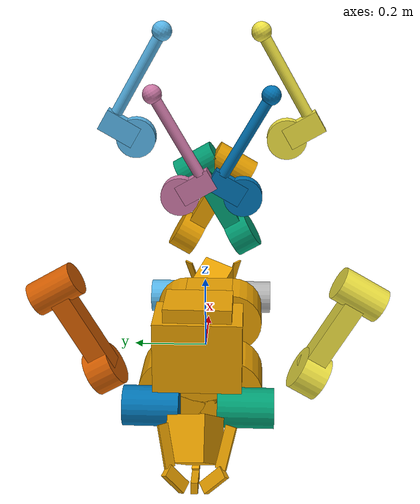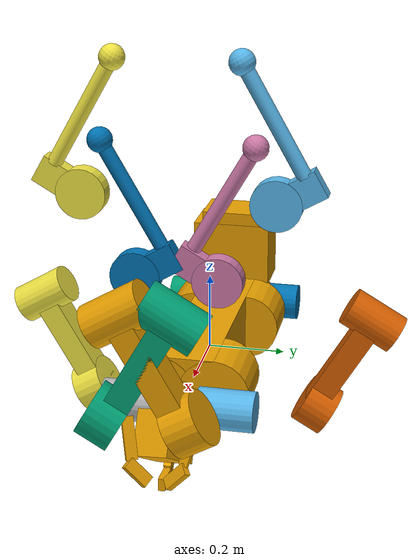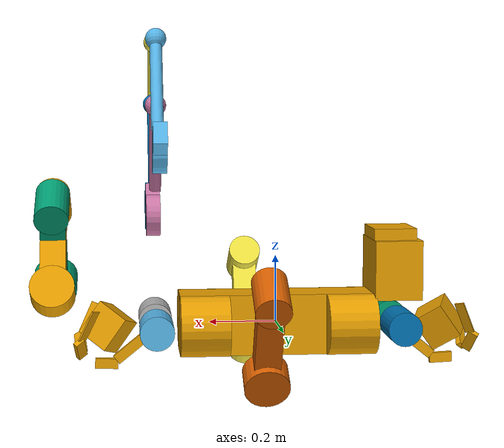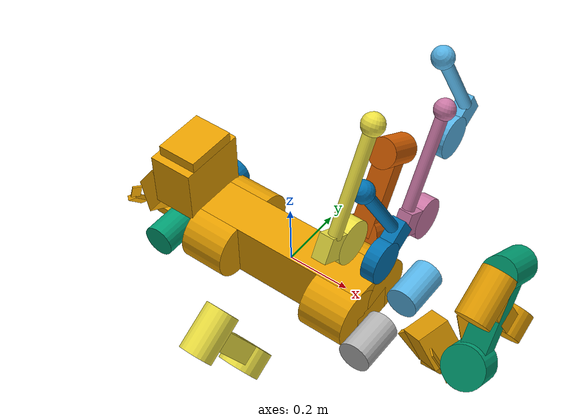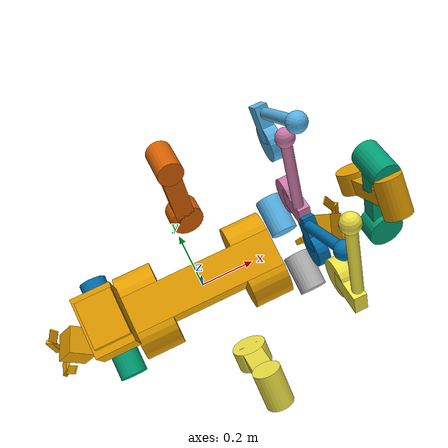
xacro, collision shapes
<?xml version='1.0' encoding='utf-8'?>
<robot name='cerberus_anymal_c_sensor_config_1' xmlns:xacro='http://ros.org/wiki/xacro'>
  <xacro:arg name="name" default="cerberus_anymal_c_sensor_config_1"/>
  <xacro:property name="robot_description_package" value="cerberus_anymal_c_sensor_config_1"/>
  <xacro:property name="robot_namespace" value="$(arg name)"/>
  <link name='${robot_namespace}/base'>
    <inertial>
      <origin xyz='-0.02203 -0.000162 0.009216' rpy='0 -0 0'/>
      <mass value='29.23832'/>
      <inertia ixx='0.236867' ixy='0.00846724' ixz='0.0854364' iyy='2.06849' iyz='-0.000253399' izz='2.09006'/>
    </inertial>
    <collision name='base_collision'>
      <origin xyz='0 0 0' rpy='0 -0 0'/>
      <geometry>
        <box size='0.58 0.14 0.18'/>
      </geometry>
    </collision>
    <collision name='base_collision_1'>
      <origin xyz='0.2175 0.07 0' rpy='3.14159 1.57079 3.14159'/>
      <geometry>
        <cylinder radius='0.09' length='0.145'/>
      </geometry>
    </collision>
    <collision name='base_collision_2'>
      <origin xyz='-0.2175 0.07 0' rpy='3.14159 1.57079 3.14159'/>
      <geometry>
        <cylinder radius='0.09' length='0.145'/>
      </geometry>
    </collision>
    <collision name='base_collision_3'>
      <origin xyz='0.2175 -0.07 0' rpy='3.14159 1.57079 3.14159'/>
      <geometry>
        <cylinder radius='0.09' length='0.145'/>
      </geometry>
    </collision>
    <collision name='base_collision_4'>
      <origin xyz='-0.2175 -0.07 0' rpy='3.14159 1.57079 3.14159'/>
      <geometry>
        <cylinder radius='0.09' length='0.145'/>
      </geometry>
    </collision>
    <collision name='base_fixed_joint_lump__alphasense_mesh_collision_5'>
      <origin xyz='-0.349598 0 0.235' rpy='0 -0 0'/>
      <geometry>
        <box size='0.128 0.165 0.098'/>
      </geometry>
    </collision>
    <collision name='base_fixed_joint_lump__bpearl_front_collision_6'>
      <origin xyz='0.501547 0 -0.010053' rpy='-2.85388 -0.54666 -0.517507'/>
      <geometry>
        <box size='0.1 0.1 0.11'/>
      </geometry>
    </collision>
    <collision name='base_fixed_joint_lump__bpearl_front_protection_bars_collision_collision_7'>
      <origin xyz='0.438876 0 -0.07746' rpy='3.14159 0.893609 3.14159'/>
      <geometry>
        <box size='0.03 0.018 0.1'/>
      </geometry>
    </collision>
    <collision name='base_fixed_joint_lump__bpearl_front_protection_bars_collision_collision_8'>
      <origin xyz='0.50696 0 -0.118904' rpy='1e-06 1.52542 1e-06'/>
      <geometry>
        <box size='0.03 0.017 0.068'/>
      </geometry>
    </collision>
    <collision name='base_fixed_joint_lump__bpearl_front_protection_bars_collision_collision_9'>
      <origin xyz='0.559988 -0.068944 0.007343' rpy='-2.68278 -0.125844 -0.83529'/>
      <geometry>
        <box size='0.03 0.005 0.1'/>
      </geometry>
    </collision>
    <collision name='base_fixed_joint_lump__bpearl_front_protection_bars_collision_collision_10'>
      <origin xyz='0.58501 -0.044431 -0.064253' rpy='-2.61177 0.516776 -0.491692'/>
      <geometry>
        <box size='0.03 0.016 0.068'/>
      </geometry>
    </collision>
    <collision name='base_fixed_joint_lump__bpearl_front_protection_bars_collision_collision_11'>
      <origin xyz='0.556968 0.071877 0.005228' rpy='2.66301 -0.103127 0.880443'/>
      <geometry>
        <box size='0.03 0.005 0.1'/>
      </geometry>
    </collision>
    <collision name='base_fixed_joint_lump__bpearl_front_protection_bars_collision_collision_12'>
      <origin xyz='0.583063 0.046321 -0.065616' rpy='2.58142 0.531321 0.5194'/>
      <geometry>
        <box size='0.03 0.016 0.068'/>
      </geometry>
    </collision>
    <collision name='base_fixed_joint_lump__bpearl_rear_collision_13'>
      <origin xyz='-0.501547 0 -0.010053' rpy='-2.85388 -0.54666 2.62409'/>
      <geometry>
        <box size='0.1 0.1 0.11'/>
      </geometry>
    </collision>
    <collision name='base_fixed_joint_lump__bpearl_rear_protection_bars_collision_collision_14'>
      <origin xyz='-0.438876 0 -0.07746' rpy='3.14159 0.893609 0'/>
      <geometry>
        <box size='0.03 0.018 0.1'/>
      </geometry>
    </collision>
    <collision name='base_fixed_joint_lump__bpearl_rear_protection_bars_collision_collision_15'>
      <origin xyz='-0.50696 0 -0.118904' rpy='1e-06 1.52542 -3.14159'/>
      <geometry>
        <box size='0.03 0.017 0.068'/>
      </geometry>
    </collision>
    <collision name='base_fixed_joint_lump__bpearl_rear_protection_bars_collision_collision_16'>
      <origin xyz='-0.565632 0.062519 0.011295' rpy='-2.72553 -0.168473 2.39838'/>
      <geometry>
        <box size='0.03 0.005 0.1'/>
      </geometry>
    </collision>
    <collision name='base_fixed_joint_lump__bpearl_rear_protection_bars_collision_collision_17'>
      <origin xyz='-0.588647 0.04029 -0.061706' rpy='-2.67308 0.489917 2.70612'/>
      <geometry>
        <box size='0.03 0.016 0.068'/>
      </geometry>
    </collision>
    <collision name='base_fixed_joint_lump__bpearl_rear_protection_bars_collision_collision_18'>
      <origin xyz='-0.553825 -0.074613 0.003028' rpy='2.64433 -0.079552 -2.21655'/>
      <geometry>
        <box size='0.03 0.005 0.1'/>
      </geometry>
    </collision>
    <collision name='base_fixed_joint_lump__bpearl_rear_protection_bars_collision_collision_19'>
      <origin xyz='-0.581038 -0.048084 -0.067034' rpy='2.55129 0.546584 -2.59477'/>
      <geometry>
        <box size='0.03 0.016 0.068'/>
      </geometry>
    </collision>
    <collision name='base_fixed_joint_lump__perception_head_cage_collision_20'>
      <origin xyz='-0.355957 0 0.1614' rpy='0 -0 0'/>
      <geometry>
        <box size='0.14151 0.21544 0.1768'/>
      </geometry>
    </collision>
    <collision name='base_fixed_joint_lump__imu_link_collision_21'>
      <origin xyz='0.2488 0.00835 0.05128' rpy='0 -0 1.5708'/>
      <geometry>
        <box size='0.024 0.024 0.01'/>
      </geometry>
    </collision>
    <visual name='base_visual'>
      <origin xyz='0 0 0' rpy='0 -0 0'/>
      <geometry>
        <mesh filename='package://${robot_description_package}/meshes/base.dae' scale='1 1 1'/>
      </geometry>
    </visual>
    <visual name='base_fixed_joint_lump__LF_HAA_visual_1'>
      <origin xyz='0.2999 0.104 0' rpy='2.61799 -0 0'/>
      <geometry>
        <mesh filename='package://${robot_description_package}/meshes/drive.dae' scale='1 1 1'/>
      </geometry>
    </visual>
    <visual name='base_fixed_joint_lump__LH_HAA_visual_2'>
      <origin xyz='-0.2999 0.104 0' rpy='-2.61799 -0 3.14159'/>
      <geometry>
        <mesh filename='package://${robot_description_package}/meshes/drive.dae' scale='1 1 1'/>
      </geometry>
    </visual>
    <visual name='base_fixed_joint_lump__RF_HAA_visual_3'>
      <origin xyz='0.2999 -0.104 0' rpy='-2.61799 0 0'/>
      <geometry>
        <mesh filename='package://${robot_description_package}/meshes/drive.dae' scale='1 1 1'/>
      </geometry>
    </visual>
    <visual name='base_fixed_joint_lump__RH_HAA_visual_4'>
      <origin xyz='-0.2999 -0.104 0' rpy='2.61799 -0 3.14159'/>
      <geometry>
        <mesh filename='package://${robot_description_package}/meshes/drive.dae' scale='1 1 1'/>
      </geometry>
    </visual>
    <visual name='base_fixed_joint_lump__battery_visual_5'>
      <origin xyz='0 0 0' rpy='0 -0 0'/>
      <geometry>
        <mesh filename='package://${robot_description_package}/meshes/battery.dae' scale='1 1 1'/>
      </geometry>
    </visual>
    <visual name='base_fixed_joint_lump__bottom_shell_visual_6'>
      <origin xyz='0 0 0' rpy='0 -0 0'/>
      <geometry>
        <mesh filename='package://${robot_description_package}/meshes/bottom_shell.dae' scale='1 1 1'/>
      </geometry>
    </visual>
    <visual name='base_fixed_joint_lump__handle_visual_7'>
      <origin xyz='0 0 0' rpy='0 -0 0'/>
      <geometry>
        <mesh filename='package://${robot_description_package}/meshes/handle.dae' scale='1 1 1'/>
      </geometry>
    </visual>
    <visual name='base_fixed_joint_lump__hatch_visual_8'>
      <origin xyz='0.116 0 0.073' rpy='0 -0 0'/>
      <geometry>
        <mesh filename='package://${robot_description_package}/meshes/hatch.dae' scale='1 1 1'/>
      </geometry>
    </visual>
    <visual name='base_fixed_joint_lump__remote_visual_9'>
      <origin xyz='0 0 0' rpy='0 -0 0'/>
      <geometry>
        <mesh filename='package://${robot_description_package}/meshes/remote.dae' scale='1 1 1'/>
      </geometry>
    </visual>
    <visual name='base_fixed_joint_lump__alphasense_mesh_visual_10'>
      <origin xyz='-0.364 0 0' rpy='0 -0 0'/>
      <geometry>
        <mesh filename='package://${robot_description_package}/meshes/alphasense.stl' scale='0.001 0.001 0.001'/>
      </geometry>
    </visual>
    <visual name='base_fixed_joint_lump__bpearl_front_visual_11'>
      <origin xyz='0.47 0 0.035' rpy='-2.85388 -0.54666 -0.517507'/>
      <geometry>
        <mesh filename='package://${robot_description_package}/meshes/rslidar_bpearl.stl' scale='0.001 0.001 0.001'/>
      </geometry>
    </visual>
    <visual name='base_fixed_joint_lump__bpearl_front_protection_bars_visual_12'>
      <origin xyz='0.414495 0 0' rpy='0 0 -3.14159'/>
      <geometry>
        <mesh filename='package://${robot_description_package}/meshes/bpearl_protection_bars.stl' scale='0.001 0.001 0.001'/>
      </geometry>
    </visual>
    <visual name='base_fixed_joint_lump__bpearl_rear_visual_13'>
      <origin xyz='-0.47 0 0.035' rpy='-2.85388 -0.54666 2.62409'/>
      <geometry>
        <mesh filename='package://${robot_description_package}/meshes/rslidar_bpearl.stl' scale='0.001 0.001 0.001'/>
      </geometry>
    </visual>
    <visual name='base_fixed_joint_lump__bpearl_rear_protection_bars_visual_14'>
      <origin xyz='-0.414495 0 0' rpy='0 -0 0'/>
      <geometry>
        <mesh filename='package://${robot_description_package}/meshes/bpearl_protection_bars.stl' scale='0.001 0.001 0.001'/>
      </geometry>
    </visual>
    <visual name='base_fixed_joint_lump__perception_head_cage_visual_15'>
      <origin xyz='-0.364 0 0' rpy='0 -0 0'/>
      <geometry>
        <mesh filename='package://${robot_description_package}/meshes/perception_head.stl' scale='0.001 0.001 0.001'/>
      </geometry>
    </visual>
    <visual name='base_fixed_joint_lump__lidar_visual_16'>
      <origin xyz='-0.364 0 0.1422' rpy='0 0 -1.5708'/>
      <geometry>
        <mesh filename='package://${robot_description_package}/meshes/lidar.dae' scale='1 1 1'/>
      </geometry>
    </visual>
    <visual name='base_fixed_joint_lump__top_shell_visual_17'>
      <origin xyz='0 0 0' rpy='0 -0 0'/>
      <geometry>
        <mesh filename='package://${robot_description_package}/meshes/top_shell.dae' scale='1 1 1'/>
      </geometry>
    </visual>
    <visual name='base_fixed_joint_lump__imu_link_visual_18'>
      <origin xyz='0.2488 0.00835 0.05128' rpy='0 -0 1.5708'/>
      <geometry>
        <box size='0.024 0.024 0.01'/>
      </geometry>
    </visual>
  </link>
  <sensor name='imu_sensor' update_rate='400'>
    <parent link='${robot_namespace}/base'/>
    <origin xyz='0.249 0.008 0.046' rpy='0 -0 1.571'/>
  </sensor>
  <sensor name='perception_head_imu_sensor' update_rate='200'>
    <parent link='${robot_namespace}/base'/>
    <origin xyz='-0.327 -0.005 0.206' rpy='0 0 -1.571'/>
  </sensor>
  <sensor name='front_laser' update_rate='10'>
    <parent link='${robot_namespace}/base'/>
    <origin xyz='-0.364 0 0.142' rpy='0 0 -1.571'/>
  </sensor>
  <sensor name='front_bpearl' update_rate='10'>
    <parent link='${robot_namespace}/base'/>
    <origin xyz='0.524 0 -0.042' rpy='-2.576 0.245 -1.936'/>
  </sensor>
  <sensor name='rear_bpearl' update_rate='10'>
    <parent link='${robot_namespace}/base'/>
    <origin xyz='-0.524 0 -0.042' rpy='-2.576 0.245 1.206'/>
  </sensor>
  <sensor name='camera_0' update_rate='20'>
    <parent link='${robot_namespace}/base'/>
    <origin xyz='-0.4 -0.05 0.229' rpy='-0.006 0.011 3.133'/>
    <camera>
      <image width='728' height='544' format='L8' hfov='2.19911' near='0.02' far='100' />
    </camera>
  </sensor>
  <sensor name='camera_1' update_rate='20'>
    <parent link='${robot_namespace}/base'/>
    <origin xyz='-0.400 0.049 0.229' rpy='-0.006 0.0 3.139'/>
    <camera>
      <image width='728' height='544' format='L8' hfov='2.19911' near='0.02' far='100' />
    </camera>
  </sensor>
  <sensor name='camera_2' update_rate='20'>
    <parent link='${robot_namespace}/base'/>
    <origin xyz='-0.379 -0.050 0.265' rpy='-0.009 -1.572 -0.004'/>
    <camera>
      <image width='728' height='544' format='L8' hfov='2.19911' near='0.02' far='100' />
    </camera>
  </sensor>
  <sensor name='camera_3' update_rate='20'>
    <parent link='${robot_namespace}/base'/>
    <origin xyz='-0.348 -0.073 0.237' rpy='0.004 -0.172 -1.575'/>
    <camera>
      <image width='728' height='544' format='L8' hfov='2.19911' near='0.02' far='100' />
    </camera>
  </sensor>
  <sensor name='camera_4' update_rate='20'>
    <parent link='${robot_namespace}/base'/>
    <origin xyz='-0.399 -0.000 0.228' rpy='-0.009 -0.002 3.136'/>
    <camera>
      <image width='728' height='544' format='L8' hfov='2.19911' near='0.02' far='100' />
    </camera>
  </sensor>
  <sensor name='camera_5' update_rate='20'>
    <parent link='${robot_namespace}/base'/>
    <origin xyz='-0.347 0.072 0.236' rpy='-0.012 -0.171 1.569'/>
    <camera>
      <image width='728' height='544' format='L8' hfov='2.19911' near='0.02' far='100' />
    </camera>
  </sensor>
  <sensor name='camera_6' update_rate='20'>
    <parent link='${robot_namespace}/base'/>
    <origin xyz='-0.379 0.050 0.265' rpy='-0.009 -1.572 -0.004'/>
    <camera>
      <image width='728' height='544' format='L8' hfov='2.19911' near='0.02' far='100' />
    </camera>
  </sensor>
  <link name='${robot_namespace}/LF_HIP'>
    <inertial>
      <origin xyz='0.056661 -0.015294 -0.008298' rpy='0 -0 0'/>
      <mass value='2.781'/>
      <inertia ixx='0.00329553' ixy='-1.03882e-05' ixz='0.000107062' iyy='0.00504435' iyz='-0.000319492' izz='0.0057269'/>
    </inertial>
    <collision name='LF_HIP_fixed_joint_lump__LF_HFE_collision'>
      <origin xyz='0.0599 -0.01196 -0.006905' rpy='-3.14159 -1.0472 -1.5708'/>
      <geometry>
        <cylinder radius='0.05' length='0.14'/>
      </geometry>
    </collision>
    <visual name='LF_HIP_fixed_joint_lump__LF_hip_fixed_visual'>
      <origin xyz='0 0 0' rpy='-2.61799 0 0'/>
      <geometry>
        <mesh filename='package://${robot_description_package}/meshes/hip_l.dae' scale='1 1 1'/>
      </geometry>
    </visual>
    <visual name='LF_HIP_fixed_joint_lump__LF_HFE_visual_1'>
      <origin xyz='0.0599 -0.072582 -0.041905' rpy='-3.14159 0.523599 -1.5708'/>
      <geometry>
        <mesh filename='package://${robot_description_package}/meshes/drive.dae' scale='1 1 1'/>
      </geometry>
    </visual>
  </link>
  <link name='${robot_namespace}/LF_THIGH'>
    <inertial>
      <origin xyz='0.030815 4.6e-05 -0.245696' rpy='0 -0 0'/>
      <mass value='3.071'/>
      <inertia ixx='0.0295638' ixy='4.42919e-05' ixz='0.00414243' iyy='0.029904' iyz='9.448e-05' izz='0.00486108'/>
    </inertial>
    <collision name='LF_THIGH_fixed_joint_lump__LF_thigh_fixed_collision'>
      <origin xyz='0.04 0 0' rpy='1.5708 0 -1.5708'/>
      <geometry>
        <cylinder radius='0.065' length='0.08'/>
      </geometry>
    </collision>
    <collision name='LF_THIGH_fixed_joint_lump__LF_thigh_fixed_collision_1'>
      <origin xyz='0.03 0 -0.141314' rpy='0 0 -1.5708'/>
      <geometry>
        <box size='0.075 0.06 0.282627'/>
      </geometry>
    </collision>
    <collision name='LF_THIGH_fixed_joint_lump__LF_KFE_collision_2'>
      <origin xyz='0.0303 0 -0.285' rpy='3.14159 1.57079 3.14159'/>
      <geometry>
        <cylinder radius='0.05' length='0.14'/>
      </geometry>
    </collision>
    <visual name='LF_THIGH_fixed_joint_lump__LF_thigh_fixed_visual'>
      <origin xyz='0 0 0' rpy='0 0 -1.5708'/>
      <geometry>
        <mesh filename='package://${robot_description_package}/meshes/thigh.dae' scale='1 1 1'/>
      </geometry>
    </visual>
    <visual name='LF_THIGH_fixed_joint_lump__LF_KFE_visual_1'>
      <origin xyz='0.1003 0 -0.285' rpy='0 -0 0'/>
      <geometry>
        <mesh filename='package://${robot_description_package}/meshes/drive.dae' scale='1 1 1'/>
      </geometry>
    </visual>
  </link>
  <link name='${robot_namespace}/LF_SHANK'>
    <inertial>
      <origin xyz='0.005462 -0.061253 -0.08066' rpy='0 -0 0'/>
      <mass value='0.58842'/>
      <inertia ixx='0.0101611' ixy='-5.35713e-05' ixz='-2.26604e-05' iyy='0.00881038' iyz='-0.00181935' izz='0.00154978'/>
    </inertial>
    <collision name='LF_SHANK_fixed_joint_lump__LF_shank_fixed_collision'>
      <origin xyz='0.02 0 0' rpy='1.5708 0 -1.5708'/>
      <geometry>
        <cylinder radius='0.06' length='0.04'/>
      </geometry>
    </collision>
    <collision name='LF_SHANK_fixed_joint_lump__LF_shank_fixed_collision_1'>
      <origin xyz='0.02 -0.057499 0' rpy='1.5708 0 -1.5708'/>
      <geometry>
        <box size='0.114998 0.0675 0.04'/>
      </geometry>
    </collision>
    <collision name='LF_SHANK_fixed_joint_lump__LF_FOOT_collision_2'>
      <origin xyz='0.01305 -0.08795 -0.168985' rpy='0 0 -1.5708'/>
      <geometry>
        <cylinder radius='0.0175' length='0.282504'/>
      </geometry>
    </collision>
    <collision name='LF_SHANK_fixed_joint_lump__LF_FOOT_collision_3'>
      <origin xyz='0.01305 -0.08795 -0.31547' rpy='0 0 -1.5708'/>
      <geometry>
        <sphere radius='0.03'/>
      </geometry>
    </collision>
    <visual name='LF_SHANK_fixed_joint_lump__LF_shank_fixed_visual'>
      <origin xyz='0 0 0' rpy='0 0 -1.5708'/>
      <geometry>
        <mesh filename='package://${robot_description_package}/meshes/shank_l.dae' scale='1 1 1'/>
      </geometry>
    </visual>
    <visual name='LF_SHANK_fixed_joint_lump__LF_FOOT_visual_1'>
      <origin xyz='0.01305 -0.08795 -0.33797' rpy='0 0 -2.35619'/>
      <geometry>
        <mesh filename='package://${robot_description_package}/meshes/foot.dae' scale='1 1 1'/>
      </geometry>
    </visual>
  </link>
  <link name='${robot_namespace}/LH_HIP'>
    <inertial>
      <origin xyz='0.056763 0.015294 -0.008298' rpy='0 -0 0'/>
      <mass value='2.781'/>
      <inertia ixx='0.00329553' ixy='-1.10053e-05' ixz='-0.000109121' iyy='0.00504617' iyz='0.000319492' izz='0.00572872'/>
    </inertial>
    <collision name='LH_HIP_fixed_joint_lump__LH_HFE_collision'>
      <origin xyz='0.0599 0.01196 -0.006905' rpy='-3.14159 -1.0472 1.5708'/>
      <geometry>
        <cylinder radius='0.05' length='0.14'/>
      </geometry>
    </collision>
    <visual name='LH_HIP_fixed_joint_lump__LH_hip_fixed_visual'>
      <origin xyz='0 0 0' rpy='2.61799 0 0'/>
      <geometry>
        <mesh filename='package://${robot_description_package}/meshes/hip_r.dae' scale='1 1 1'/>
      </geometry>
    </visual>
    <visual name='LH_HIP_fixed_joint_lump__LH_HFE_visual_1'>
      <origin xyz='0.0599 0.072582 -0.041905' rpy='-3.14159 0.523599 1.5708'/>
      <geometry>
        <mesh filename='package://${robot_description_package}/meshes/drive.dae' scale='1 1 1'/>
      </geometry>
    </visual>
  </link>
  <link name='${robot_namespace}/LH_THIGH'>
    <inertial>
      <origin xyz='0.030815 4.6e-05 -0.245696' rpy='0 -0 0'/>
      <mass value='3.071'/>
      <inertia ixx='0.0295638' ixy='4.43959e-05' ixz='0.00414243' iyy='0.029904' iyz='0.000114794' izz='0.00486108'/>
    </inertial>
    <collision name='LH_THIGH_fixed_joint_lump__LH_thigh_fixed_collision'>
      <origin xyz='0.04 0 0' rpy='1.5708 0 -1.5708'/>
      <geometry>
        <cylinder radius='0.065' length='0.08'/>
      </geometry>
    </collision>
    <collision name='LH_THIGH_fixed_joint_lump__LH_thigh_fixed_collision_1'>
      <origin xyz='0.03 0 -0.141314' rpy='0 0 -1.5708'/>
      <geometry>
        <box size='0.075 0.06 0.282627'/>
      </geometry>
    </collision>
    <collision name='LH_THIGH_fixed_joint_lump__LH_KFE_collision_2'>
      <origin xyz='0.0303 0 -0.285' rpy='3.14159 1.57079 3.14159'/>
      <geometry>
        <cylinder radius='0.05' length='0.14'/>
      </geometry>
    </collision>
    <visual name='LH_THIGH_fixed_joint_lump__LH_thigh_fixed_visual'>
      <origin xyz='0 0 0' rpy='0 0 -1.5708'/>
      <geometry>
        <mesh filename='package://${robot_description_package}/meshes/thigh.dae' scale='1 1 1'/>
      </geometry>
    </visual>
    <visual name='LH_THIGH_fixed_joint_lump__LH_KFE_visual_1'>
      <origin xyz='0.1003 0 -0.285' rpy='0 -0 0'/>
      <geometry>
        <mesh filename='package://${robot_description_package}/meshes/drive.dae' scale='1 1 1'/>
      </geometry>
    </visual>
  </link>
  <link name='${robot_namespace}/LH_SHANK'>
    <inertial>
      <origin xyz='0.005462 0.061253 -0.08066' rpy='0 -0 0'/>
      <mass value='0.58842'/>
      <inertia ixx='0.0101611' ixy='5.35713e-05' ixz='-2.26604e-05' iyy='0.00881038' iyz='0.00181935' izz='0.00154978'/>
    </inertial>
    <collision name='LH_SHANK_fixed_joint_lump__LH_shank_fixed_collision'>
      <origin xyz='0.02 0 0' rpy='1.5708 0 -1.5708'/>
      <geometry>
        <cylinder radius='0.06' length='0.04'/>
      </geometry>
    </collision>
    <collision name='LH_SHANK_fixed_joint_lump__LH_shank_fixed_collision_1'>
      <origin xyz='0.02 0.057499 0' rpy='1.5708 0 -1.5708'/>
      <geometry>
        <box size='0.114998 0.0675 0.04'/>
      </geometry>
    </collision>
    <collision name='LH_SHANK_fixed_joint_lump__LH_FOOT_collision_2'>
      <origin xyz='0.01305 0.08795 -0.168985' rpy='0 0 -1.5708'/>
      <geometry>
        <cylinder radius='0.0175' length='0.282504'/>
      </geometry>
    </collision>
    <collision name='LH_SHANK_fixed_joint_lump__LH_FOOT_collision_3'>
      <origin xyz='0.01305 0.08795 -0.31547' rpy='0 0 -1.5708'/>
      <geometry>
        <sphere radius='0.03'/>
      </geometry>
    </collision>
    <visual name='LH_SHANK_fixed_joint_lump__LH_shank_fixed_visual'>
      <origin xyz='0 0 0' rpy='0 -0 1.5708'/>
      <geometry>
        <mesh filename='package://${robot_description_package}/meshes/shank_r.dae' scale='1 1 1'/>
      </geometry>
    </visual>
    <visual name='LH_SHANK_fixed_joint_lump__LH_FOOT_visual_1'>
      <origin xyz='0.01305 0.08795 -0.33797' rpy='0 -0 2.35619'/>
      <geometry>
        <mesh filename='package://${robot_description_package}/meshes/foot.dae' scale='1 1 1'/>
      </geometry>
    </visual>
  </link>
  <link name='${robot_namespace}/RF_HIP'>
    <inertial>
      <origin xyz='0.056763 0.015294 -0.008298' rpy='0 -0 0'/>
      <mass value='2.781'/>
      <inertia ixx='0.00329553' ixy='-1.10053e-05' ixz='-0.000109121' iyy='0.00504617' iyz='0.000319492' izz='0.00572872'/>
    </inertial>
    <collision name='RF_HIP_fixed_joint_lump__RF_HFE_collision'>
      <origin xyz='0.0599 0.01196 -0.006905' rpy='3.14159 -1.0472 1.5708'/>
      <geometry>
        <cylinder radius='0.05' length='0.14'/>
      </geometry>
    </collision>
    <visual name='RF_HIP_fixed_joint_lump__RF_hip_fixed_visual'>
      <origin xyz='0 0 0' rpy='2.61799 -0 0'/>
      <geometry>
        <mesh filename='package://${robot_description_package}/meshes/hip_r.dae' scale='1 1 1'/>
      </geometry>
    </visual>
    <visual name='RF_HIP_fixed_joint_lump__RF_HFE_visual_1'>
      <origin xyz='0.0599 0.072582 -0.041905' rpy='3.14159 0.523599 1.5708'/>
      <geometry>
        <mesh filename='package://${robot_description_package}/meshes/drive.dae' scale='1 1 1'/>
      </geometry>
    </visual>
  </link>
  <link name='${robot_namespace}/RF_THIGH'>
    <inertial>
      <origin xyz='0.030815 4.6e-05 -0.245696' rpy='0 -0 0'/>
      <mass value='3.071'/>
      <inertia ixx='0.0295638' ixy='4.43959e-05' ixz='0.00414243' iyy='0.029904' iyz='0.000114794' izz='0.00486108'/>
    </inertial>
    <collision name='RF_THIGH_fixed_joint_lump__RF_thigh_fixed_collision'>
      <origin xyz='0.04 0 0' rpy='1.5708 -0 1.5708'/>
      <geometry>
        <cylinder radius='0.065' length='0.08'/>
      </geometry>
    </collision>
    <collision name='RF_THIGH_fixed_joint_lump__RF_thigh_fixed_collision_1'>
      <origin xyz='0.03 0 -0.141314' rpy='0 -0 1.5708'/>
      <geometry>
        <box size='0.075 0.06 0.282627'/>
      </geometry>
    </collision>
    <collision name='RF_THIGH_fixed_joint_lump__RF_KFE_collision_2'>
      <origin xyz='0.0303 0 -0.285' rpy='3.14159 1.57079 3.14159'/>
      <geometry>
        <cylinder radius='0.05' length='0.14'/>
      </geometry>
    </collision>
    <visual name='RF_THIGH_fixed_joint_lump__RF_thigh_fixed_visual'>
      <origin xyz='0 0 0' rpy='0 0 -1.5708'/>
      <geometry>
        <mesh filename='package://${robot_description_package}/meshes/thigh.dae' scale='1 1 1'/>
      </geometry>
    </visual>
    <visual name='RF_THIGH_fixed_joint_lump__RF_KFE_visual_1'>
      <origin xyz='0.1003 0 -0.285' rpy='0 -0 0'/>
      <geometry>
        <mesh filename='package://${robot_description_package}/meshes/drive.dae' scale='1 1 1'/>
      </geometry>
    </visual>
  </link>
  <link name='${robot_namespace}/RF_SHANK'>
    <inertial>
      <origin xyz='0.005462 0.061253 -0.08066' rpy='0 -0 0'/>
      <mass value='0.58842'/>
      <inertia ixx='0.0101611' ixy='5.35713e-05' ixz='-2.26604e-05' iyy='0.00881038' iyz='0.00181935' izz='0.00154978'/>
    </inertial>
    <collision name='RF_SHANK_fixed_joint_lump__RF_shank_fixed_collision'>
      <origin xyz='0.02 0 0' rpy='1.5708 -0 1.5708'/>
      <geometry>
        <cylinder radius='0.06' length='0.04'/>
      </geometry>
    </collision>
    <collision name='RF_SHANK_fixed_joint_lump__RF_shank_fixed_collision_1'>
      <origin xyz='0.02 0.057499 0' rpy='1.5708 -0 1.5708'/>
      <geometry>
        <box size='0.114998 0.0675 0.04'/>
      </geometry>
    </collision>
    <collision name='RF_SHANK_fixed_joint_lump__RF_FOOT_collision_2'>
      <origin xyz='0.01305 0.08795 -0.168985' rpy='0 -0 1.5708'/>
      <geometry>
        <cylinder radius='0.0175' length='0.282504'/>
      </geometry>
    </collision>
    <collision name='RF_SHANK_fixed_joint_lump__RF_FOOT_collision_3'>
      <origin xyz='0.01305 0.08795 -0.31547' rpy='0 -0 1.5708'/>
      <geometry>
        <sphere radius='0.03'/>
      </geometry>
    </collision>
    <visual name='RF_SHANK_fixed_joint_lump__RF_shank_fixed_visual'>
      <origin xyz='0 0 0' rpy='0 -0 1.5708'/>
      <geometry>
        <mesh filename='package://${robot_description_package}/meshes/shank_r.dae' scale='1 1 1'/>
      </geometry>
    </visual>
    <visual name='RF_SHANK_fixed_joint_lump__RF_FOOT_visual_1'>
      <origin xyz='0.01305 0.08795 -0.33797' rpy='0 -0 2.35619'/>
      <geometry>
        <mesh filename='package://${robot_description_package}/meshes/foot.dae' scale='1 1 1'/>
      </geometry>
    </visual>
  </link>
  <link name='${robot_namespace}/RH_HIP'>
    <inertial>
      <origin xyz='0.056661 -0.015294 -0.008298' rpy='0 -0 0'/>
      <mass value='2.781'/>
      <inertia ixx='0.00329553' ixy='-1.03882e-05' ixz='0.000107062' iyy='0.00504435' iyz='-0.000319492' izz='0.0057269'/>
    </inertial>
    <collision name='RH_HIP_fixed_joint_lump__RH_HFE_collision'>
      <origin xyz='0.0599 -0.01196 -0.006905' rpy='3.14159 -1.0472 -1.5708'/>
      <geometry>
        <cylinder radius='0.05' length='0.14'/>
      </geometry>
    </collision>
    <visual name='RH_HIP_fixed_joint_lump__RH_hip_fixed_visual'>
      <origin xyz='0 0 0' rpy='-2.61799 -0 0'/>
      <geometry>
        <mesh filename='package://${robot_description_package}/meshes/hip_l.dae' scale='1 1 1'/>
      </geometry>
    </visual>
    <visual name='RH_HIP_fixed_joint_lump__RH_HFE_visual_1'>
      <origin xyz='0.0599 -0.072582 -0.041905' rpy='3.14159 0.523599 -1.5708'/>
      <geometry>
        <mesh filename='package://${robot_description_package}/meshes/drive.dae' scale='1 1 1'/>
      </geometry>
    </visual>
  </link>
  <link name='${robot_namespace}/RH_THIGH'>
    <inertial>
      <origin xyz='0.030815 4.6e-05 -0.245696' rpy='0 -0 0'/>
      <mass value='3.071'/>
      <inertia ixx='0.0295638' ixy='4.42919e-05' ixz='0.00414243' iyy='0.029904' iyz='9.448e-05' izz='0.00486108'/>
    </inertial>
    <collision name='RH_THIGH_fixed_joint_lump__RH_thigh_fixed_collision'>
      <origin xyz='0.04 0 0' rpy='1.5708 -0 1.5708'/>
      <geometry>
        <cylinder radius='0.065' length='0.08'/>
      </geometry>
    </collision>
    <collision name='RH_THIGH_fixed_joint_lump__RH_thigh_fixed_collision_1'>
      <origin xyz='0.03 0 -0.141314' rpy='0 -0 1.5708'/>
      <geometry>
        <box size='0.075 0.06 0.282627'/>
      </geometry>
    </collision>
    <collision name='RH_THIGH_fixed_joint_lump__RH_KFE_collision_2'>
      <origin xyz='0.0303 0 -0.285' rpy='3.14159 1.57079 3.14159'/>
      <geometry>
        <cylinder radius='0.05' length='0.14'/>
      </geometry>
    </collision>
    <visual name='RH_THIGH_fixed_joint_lump__RH_thigh_fixed_visual'>
      <origin xyz='0 0 0' rpy='0 0 -1.5708'/>
      <geometry>
        <mesh filename='package://${robot_description_package}/meshes/thigh.dae' scale='1 1 1'/>
      </geometry>
    </visual>
    <visual name='RH_THIGH_fixed_joint_lump__RH_KFE_visual_1'>
      <origin xyz='0.1003 0 -0.285' rpy='0 -0 0'/>
      <geometry>
        <mesh filename='package://${robot_description_package}/meshes/drive.dae' scale='1 1 1'/>
      </geometry>
    </visual>
  </link>
  <link name='${robot_namespace}/RH_SHANK'>
    <inertial>
      <origin xyz='0.005462 -0.061253 -0.08066' rpy='0 -0 0'/>
      <mass value='0.58842'/>
      <inertia ixx='0.0101611' ixy='-5.35713e-05' ixz='-2.26604e-05' iyy='0.00881038' iyz='-0.00181935' izz='0.00154978'/>
    </inertial>
    <collision name='RH_SHANK_fixed_joint_lump__RH_shank_fixed_collision'>
      <origin xyz='0.02 0 0' rpy='1.5708 -0 1.5708'/>
      <geometry>
        <cylinder radius='0.06' length='0.04'/>
      </geometry>
    </collision>
    <collision name='RH_SHANK_fixed_joint_lump__RH_shank_fixed_collision_1'>
      <origin xyz='0.02 -0.057499 0' rpy='1.5708 -0 1.5708'/>
      <geometry>
        <box size='0.114998 0.0675 0.04'/>
      </geometry>
    </collision>
    <collision name='RH_SHANK_fixed_joint_lump__RH_FOOT_collision_2'>
      <origin xyz='0.01305 -0.08795 -0.168985' rpy='0 -0 1.5708'/>
      <geometry>
        <cylinder radius='0.0175' length='0.282504'/>
      </geometry>
    </collision>
    <collision name='RH_SHANK_fixed_joint_lump__RH_FOOT_collision_3'>
      <origin xyz='0.01305 -0.08795 -0.31547' rpy='0 -0 1.5708'/>
      <geometry>
        <sphere radius='0.03'/>
      </geometry>
    </collision>
    <visual name='RH_SHANK_fixed_joint_lump__RH_shank_fixed_visual'>
      <origin xyz='0 0 0' rpy='0 0 -1.5708'/>
      <geometry>
        <mesh filename='package://${robot_description_package}/meshes/shank_l.dae' scale='1 1 1'/>
      </geometry>
    </visual>
    <visual name='RH_SHANK_fixed_joint_lump__RH_FOOT_visual_1'>
      <origin xyz='0.01305 -0.08795 -0.33797' rpy='0 0 -2.35619'/>
      <geometry>
        <mesh filename='package://${robot_description_package}/meshes/foot.dae' scale='1 1 1'/>
      </geometry>
    </visual>
  </link>
  <joint name='LF_HAA' type='revolute'>
    <origin xyz='0.2999 0.104 0' rpy='2.61799 -0 0'/>
    <parent link='${robot_namespace}/base'/>
    <child link='${robot_namespace}/LF_HIP'/>
    <dynamics damping='0' friction='0' />
    <axis xyz='1 0 0'/>
    <limit lower='-0.72' upper='0.49' effort='80' velocity='7.5'/>
  </joint>
  <joint name='LF_HFE' type='revolute'>
    <origin xyz='0.3598 0.18781 0' rpy='0 -0 1.5708'/>
    <parent link='${robot_namespace}/LF_HIP'/>
    <child link='${robot_namespace}/LF_THIGH'/>
    <dynamics damping='0' friction='0' />
    <axis xyz='1 0 0'/>
    <limit lower='-9.42478' upper='9.42478' effort='80' velocity='7.5'/>
  </joint>
  <joint name='LF_KFE' type='revolute'>
    <origin xyz='0.3598 0.28811 -0.285' rpy='0 -0 1.5708'/>
    <parent link='${robot_namespace}/LF_THIGH'/>
    <child link='${robot_namespace}/LF_SHANK'/>
    <dynamics damping='0' friction='0' />
    <axis xyz='1 0 0'/>
    <limit lower='-9.42478' upper='9.42478' effort='80' velocity='7.5'/>
  </joint>
  <joint name='LH_HAA' type='revolute'>
    <origin xyz='-0.2999 0.104 0' rpy='-2.61799 -0 3.14159'/>
    <parent link='${robot_namespace}/base'/>
    <child link='${robot_namespace}/LH_HIP'/>
    <dynamics damping='0' friction='0' />
    <axis xyz='-1 0 0'/>
    <limit lower='-0.72' upper='0.49' effort='80' velocity='7.5'/>
  </joint>
  <joint name='LH_HFE' type='revolute'>
    <origin xyz='-0.3598 0.18781 0' rpy='0 -0 1.5708'/>
    <parent link='${robot_namespace}/LH_HIP'/>
    <child link='${robot_namespace}/LH_THIGH'/>
    <dynamics damping='0' friction='0' />
    <axis xyz='1 0 0'/>
    <limit lower='-9.42478' upper='9.42478' effort='80' velocity='7.5'/>
  </joint>
  <joint name='LH_KFE' type='revolute'>
    <origin xyz='-0.3598 0.28811 -0.285' rpy='0 -0 1.5708'/>
    <parent link='${robot_namespace}/LH_THIGH'/>
    <child link='${robot_namespace}/LH_SHANK'/>
    <dynamics damping='0' friction='0' />
    <axis xyz='1 0 0'/>
    <limit lower='-9.42478' upper='9.42478' effort='80' velocity='7.5'/>
  </joint>
  <joint name='RF_HAA' type='revolute'>
    <origin xyz='0.2999 -0.104 0' rpy='-2.61799 0 0'/>
    <parent link='${robot_namespace}/base'/>
    <child link='${robot_namespace}/RF_HIP'/>
    <dynamics damping='0' friction='0' />
    <axis xyz='1 0 0'/>
    <limit lower='-0.49' upper='0.72' effort='80' velocity='7.5'/>
  </joint>
  <joint name='RF_HFE' type='revolute'>
    <origin xyz='0.3598 -0.18781 0' rpy='0 0 -1.5708'/>
    <parent link='${robot_namespace}/RF_HIP'/>
    <child link='${robot_namespace}/RF_THIGH'/>
    <dynamics damping='0' friction='0' />
    <axis xyz='-1 0 0'/>
    <limit lower='-9.42478' upper='9.42478' effort='80' velocity='7.5'/>
  </joint>
  <joint name='RF_KFE' type='revolute'>
    <origin xyz='0.3598 -0.28811 -0.285' rpy='0 0 -1.5708'/>
    <parent link='${robot_namespace}/RF_THIGH'/>
    <child link='${robot_namespace}/RF_SHANK'/>
    <dynamics damping='0' friction='0' />
    <axis xyz='-1 0 0'/>
    <limit lower='-9.42478' upper='9.42478' effort='80' velocity='7.5'/>
  </joint>
  <joint name='RH_HAA' type='revolute'>
    <origin xyz='-0.2999 -0.104 0' rpy='2.61799 -0 3.14159'/>
    <parent link='${robot_namespace}/base'/>
    <child link='${robot_namespace}/RH_HIP'/>
    <dynamics damping='0' friction='0' />
    <axis xyz='-1 0 0'/>
    <limit lower='-0.49' upper='0.72' effort='80' velocity='7.5'/>
  </joint>
  <joint name='RH_HFE' type='revolute'>
    <origin xyz='-0.3598 -0.18781 0' rpy='0 0 -1.5708'/>
    <parent link='${robot_namespace}/RH_HIP'/>
    <child link='${robot_namespace}/RH_THIGH'/>
    <dynamics damping='0' friction='0' />
    <axis xyz='-1 0 0'/>
    <limit lower='-9.42478' upper='9.42478' effort='80' velocity='7.5'/>
  </joint>
  <joint name='RH_KFE' type='revolute'>
    <origin xyz='-0.3598 -0.28811 -0.285' rpy='0 0 -1.5708'/>
    <parent link='${robot_namespace}/RH_THIGH'/>
    <child link='${robot_namespace}/RH_SHANK'/>
    <dynamics damping='0' friction='0' />
    <axis xyz='-1 0 0'/>
    <limit lower='-9.42478' upper='9.42478' effort='80' velocity='7.5'/>
  </joint>
</robot>
